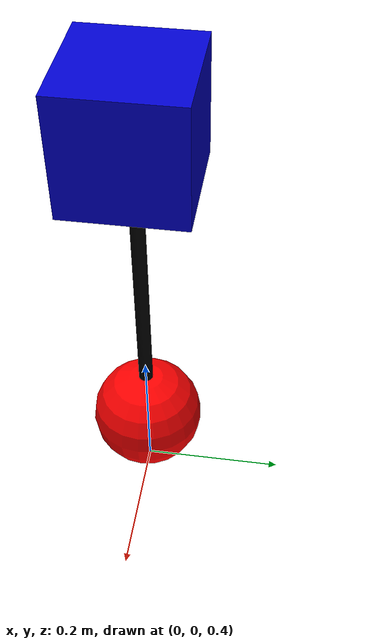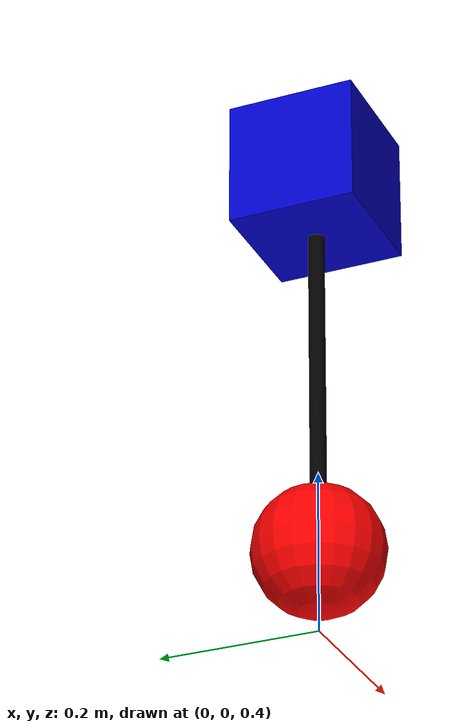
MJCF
<mujoco model="cart_pole">
    <compiler angle="radian" autolimits="true"/>
    <statistic meansize="0.262151" extent="0.636603" center="0 0 -0.231699"/>
    <worldbody>
        <body name="cart" pos="0 0 1">
            <inertial pos="0 0 0" mass="1" diaginertia="1e-3 1e-3 1e-3"/>
            <joint name="cart_joint" pos="0 0 0" axis="1 0 0" type="slide" range="-1 1"/>
            <geom size="0.08 0.08 0.08" type="box" rgba="0 0 0.8 1"/>
            <body name="pole">
                <inertial pos="0 0 -0.5" mass="0.5" diaginertia="1e-6 1e-6 1e-6"/>
                <joint name="pole_joint" pos="0 0 0" axis="0 1 0" range="-600.283 600.283"/>
                <geom size="0.01 0.25" pos="0 0 -0.25" type="cylinder" rgba="0 0 0 1"/>
                <geom size="0.08" pos="0 0 -0.5" rgba="1 0 0 1"/>
            </body>
        </body>
    </worldbody>

    <actuator>
        <motor joint="cart_joint"/>
    </actuator>
</mujoco>
